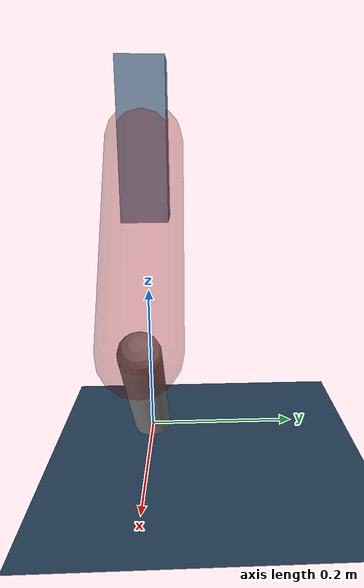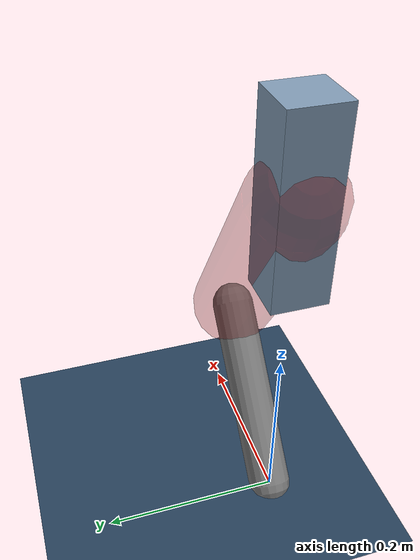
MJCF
<mujoco model="Hopper2D">
	<compiler inertiafromgeom="true" angle="radian" />
	<option timestep="0.001" integrator="implicit" cone="elliptic" solver="Newton" tolerance="1e-10" />

	<default>
		<geom contype="1" conaffinity="1" condim="3" friction="2 0.005 0.0001" solref="0.005 1" />
		<joint limited="true" damping="0.1" />
	</default>

	<asset>
		<texture name="skybox" type="skybox" builtin="gradient" rgb1=".4 .6 .8" rgb2="0 0 0" width="800" height="800" />
		<texture name="grid" type="2d" builtin="checker" rgb1=".1 .2 .3" rgb2=".2 .3 .4" width="300" height="300" mark="edge" markrgb=".2 .3 .4" />
		<material name="ground" texture="grid" texrepeat="1 1" texuniform="true" reflectance="0.1" />
		<material name="leg" rgba="0.5 0.6 0.7 1" />
	</asset>

	<worldbody>

		<geom name="floor" type="plane" size="5 5 0.25" material="ground" />

		<light directional="false" diffuse="0.8 0.8 0.8" specular="0.3 0.3 0.3" pos="0 0 2" dir="0 0 -1" />
		<light mode="targetbodycom" target="base" directional="false" diffuse="0.8 0.8 0.8" specular="0.3 0.3 0.3" pos="0 0 2" dir="0 0 -1" />

		<camera name="fixed" pos="0 -2 1" xyaxes="1 0 0 0 0 1" />
		<camera name="tracking" mode="trackcom" pos="0 -3 1" />

		<body name="root" pos="0 0 0.3976445771879798">
			<joint name="slide_x" type="slide" axis="1 0 0" range="-100 100" />
			<joint name="slide_z" type="slide" axis="0 0 1" range="0 10" />

			<body name="base" pos="0 0 0">
				<geom name="torso" type="box" size="0.03 0.03 0.1" mass="2.674" material="leg" />

				<body name="link1" pos="0 0 0" euler="0 0.9836471169339956 0">
					<joint type="hinge" axis="0 -1 0" pos="0 0 0" name="hinge1" limited="true" range="-3.14 3.14" stiffness="0" damping="0.1" />
					<geom name="thigh" type="capsule" fromto="0 0 0 0.27379301275226636 0 0" size="0.05" rgba="0.5 0 0 0.3" mass="0.9186618331558924" />

					<body name="link2" pos="0.27379301275226636 0 0" euler="0 1.3165145574226043 0">
						<joint type="hinge" axis="0 -1 0" pos="0 0 0" name="hinge2" limited="true" range="-3.14 3.14" stiffness="0" damping="0.1" />
						<geom name="shank" type="capsule" fromto="0 0 0 0.22761007079518467 0 0" size="0.025" mass="0.42398805663614775" />

					</body>
				</body>
			</body>
		</body>
	</worldbody>

	<actuator>
		<motor name="torque1" joint="hinge1" ctrlrange="-117.25899453448713 117.25899453448713" ctrllimited="true" gear="1" />
		<motor name="torque2" joint="hinge2" ctrlrange="-33.82477859539517 33.82477859539517" ctrllimited="true" gear="1" />
	</actuator>
</mujoco>
